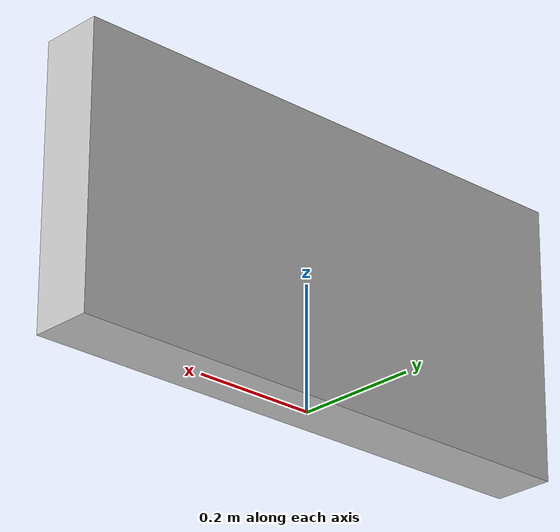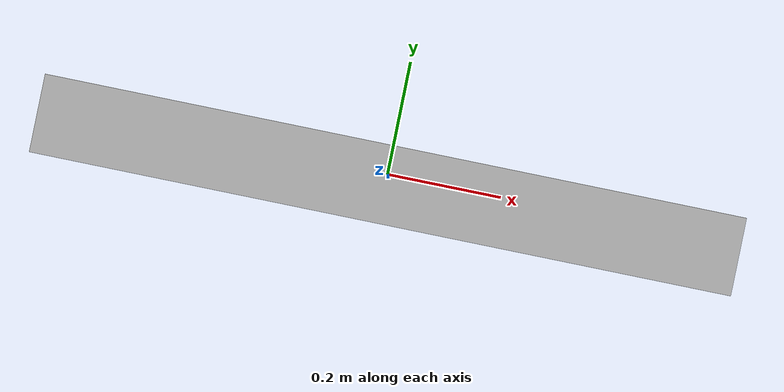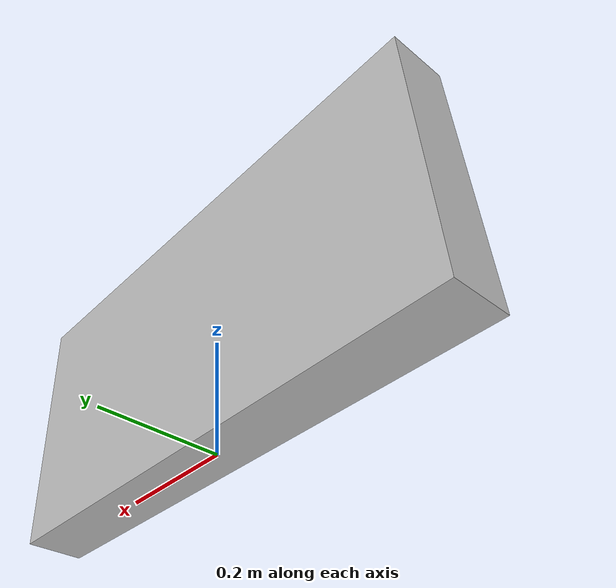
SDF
<?xml version="1.0" ?>
<sdf version="1.6">
  <model name="water_bottles_block_2">
    <static>true</static>
    <link name="link">
      <collision name="collision">
        <geometry>
          <mesh>
            <scale>1 1 1</scale>
            <uri>model://water_bottles_block_2/meshes/water_bottles_block_2.stl</uri>
          </mesh>
        </geometry>
        <surface>
          <friction>
            <ode>
              <mu>1.2</mu>
              <mu2>1.2</mu2>
            </ode>
          </friction>
        </surface>
      </collision>
      <visual name="visual">
        <geometry>
          <mesh>
            <scale>1 1 1</scale>
            <uri>model://water_bottles_block_2/meshes/water_bottles_block_2.dae</uri>
          </mesh>
        </geometry>
      </visual>
    </link>
  </model>
</sdf>
